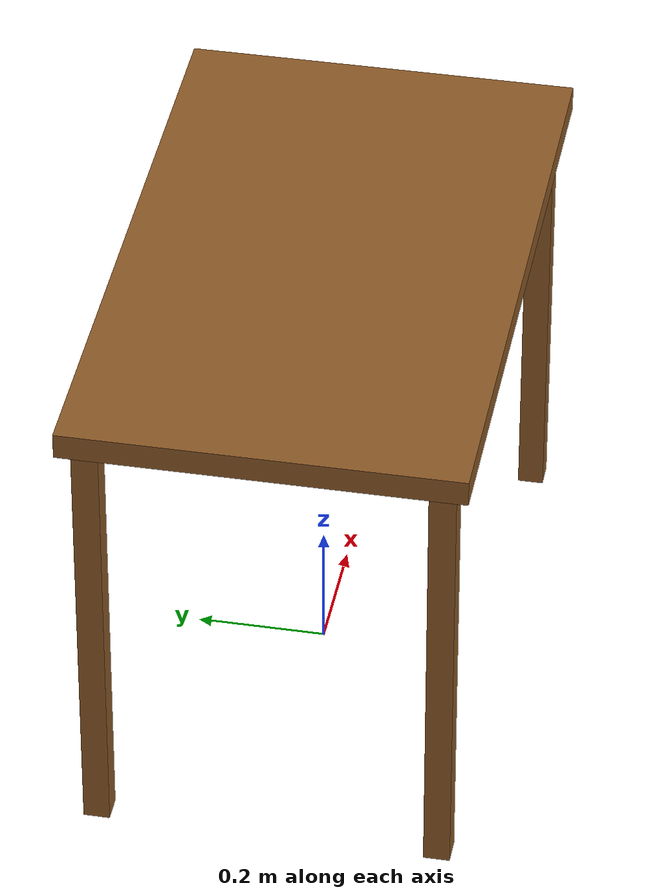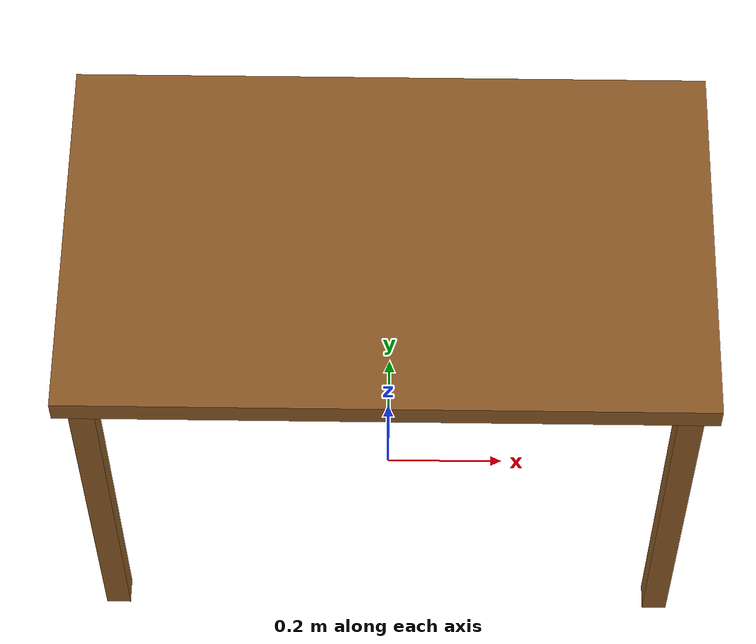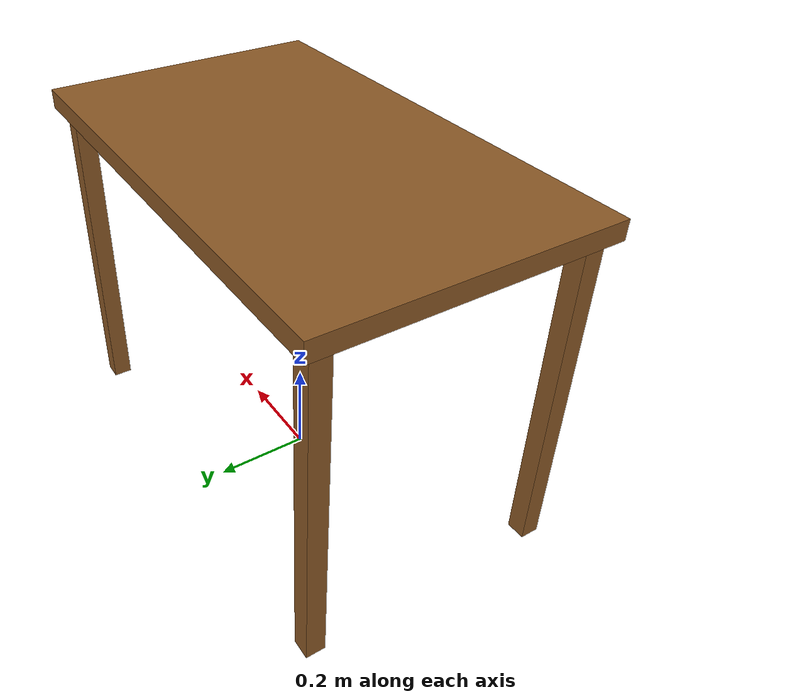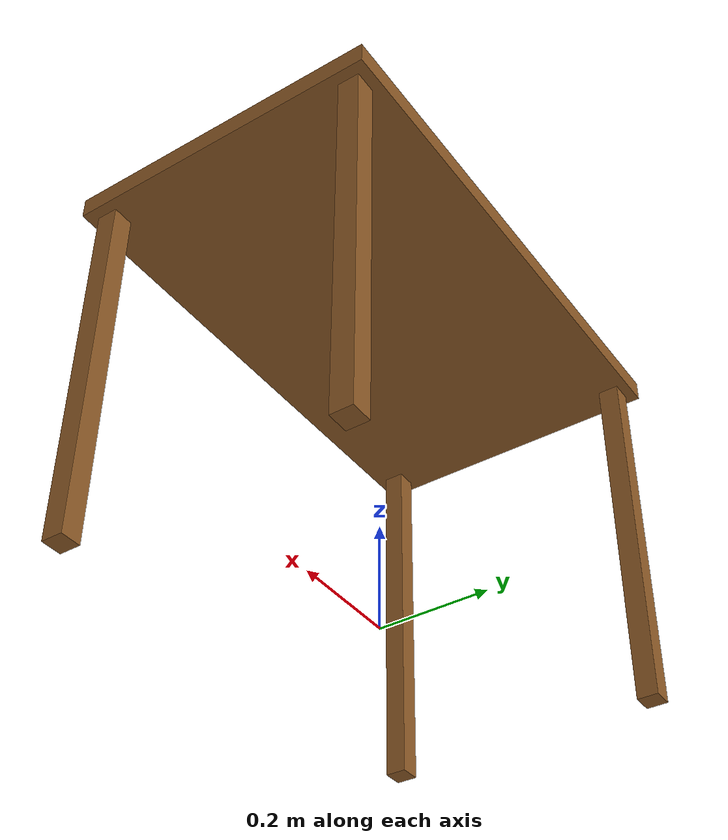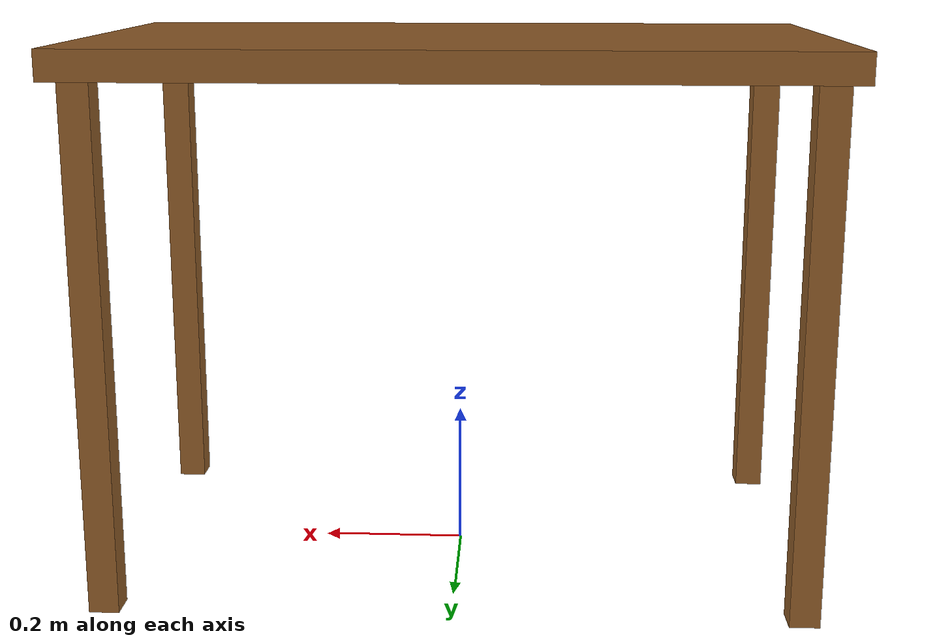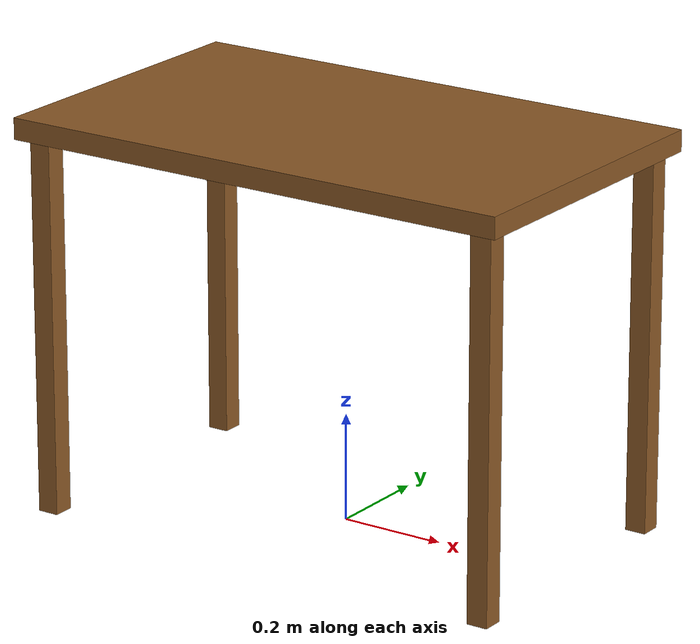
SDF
<?xml version="1.0" ?>
<sdf version="1.9">
  <model name="table">
    <static>true</static>

    <!-- Tabletop: 1.0 x 0.6 x 0.04, surface at z=0.74 -->
    <link name="tabletop">
      <pose>0 0 0.72 0 0 0</pose>
      <collision name="collision">
        <geometry>
          <box><size>1.0 0.6 0.04</size></box>
        </geometry>
      </collision>
      <visual name="visual">
        <geometry>
          <box><size>1.0 0.6 0.04</size></box>
        </geometry>
        <material>
          <ambient>0.45 0.28 0.12 1</ambient>
          <diffuse>0.55 0.35 0.15 1</diffuse>
          <specular>0.1 0.1 0.1 1</specular>
        </material>
      </visual>
    </link>

    <!-- Legs: 0.04 x 0.04 x 0.70, inset 0.04m from edges -->
    <link name="leg_front_left">
      <pose>-0.46 -0.26 0.35 0 0 0</pose>
      <collision name="collision">
        <geometry>
          <box><size>0.04 0.04 0.70</size></box>
        </geometry>
      </collision>
      <visual name="visual">
        <geometry>
          <box><size>0.04 0.04 0.70</size></box>
        </geometry>
        <material>
          <ambient>0.45 0.28 0.12 1</ambient>
          <diffuse>0.55 0.35 0.15 1</diffuse>
          <specular>0.1 0.1 0.1 1</specular>
        </material>
      </visual>
    </link>

    <link name="leg_front_right">
      <pose>0.46 -0.26 0.35 0 0 0</pose>
      <collision name="collision">
        <geometry>
          <box><size>0.04 0.04 0.70</size></box>
        </geometry>
      </collision>
      <visual name="visual">
        <geometry>
          <box><size>0.04 0.04 0.70</size></box>
        </geometry>
        <material>
          <ambient>0.45 0.28 0.12 1</ambient>
          <diffuse>0.55 0.35 0.15 1</diffuse>
          <specular>0.1 0.1 0.1 1</specular>
        </material>
      </visual>
    </link>

    <link name="leg_back_left">
      <pose>-0.46 0.26 0.35 0 0 0</pose>
      <collision name="collision">
        <geometry>
          <box><size>0.04 0.04 0.70</size></box>
        </geometry>
      </collision>
      <visual name="visual">
        <geometry>
          <box><size>0.04 0.04 0.70</size></box>
        </geometry>
        <material>
          <ambient>0.45 0.28 0.12 1</ambient>
          <diffuse>0.55 0.35 0.15 1</diffuse>
          <specular>0.1 0.1 0.1 1</specular>
        </material>
      </visual>
    </link>

    <link name="leg_back_right">
      <pose>0.46 0.26 0.35 0 0 0</pose>
      <collision name="collision">
        <geometry>
          <box><size>0.04 0.04 0.70</size></box>
        </geometry>
      </collision>
      <visual name="visual">
        <geometry>
          <box><size>0.04 0.04 0.70</size></box>
        </geometry>
        <material>
          <ambient>0.45 0.28 0.12 1</ambient>
          <diffuse>0.55 0.35 0.15 1</diffuse>
          <specular>0.1 0.1 0.1 1</specular>
        </material>
      </visual>
    </link>

  </model>
</sdf>
